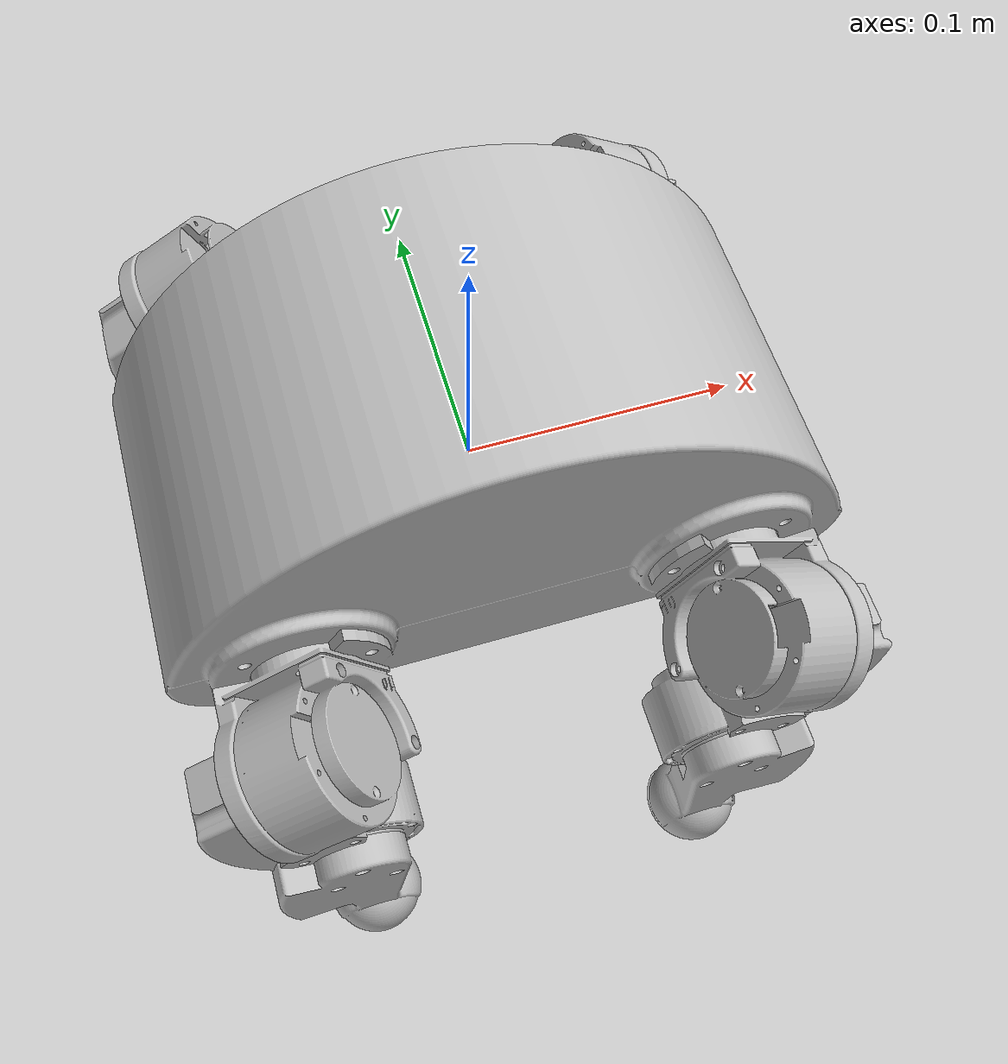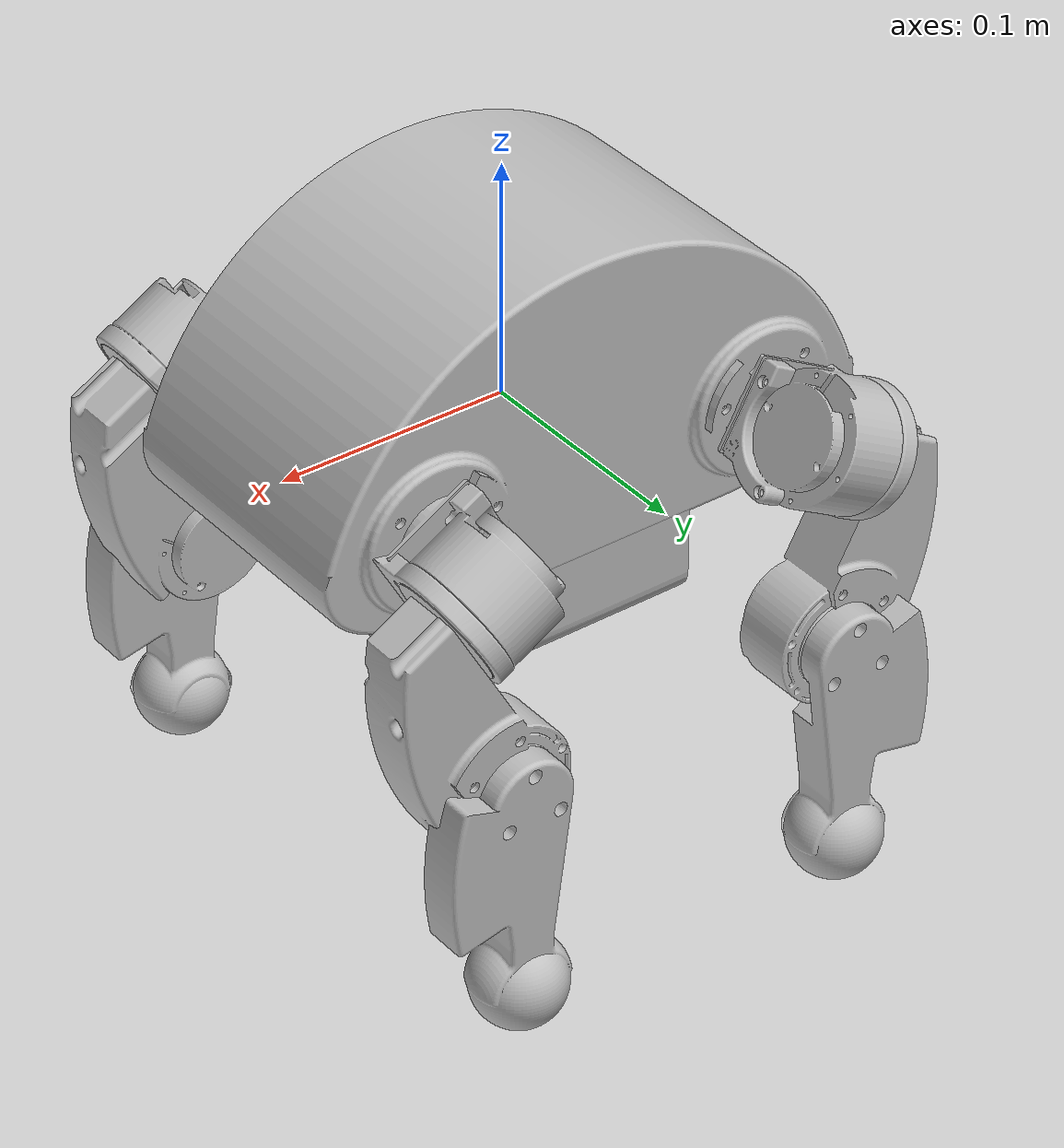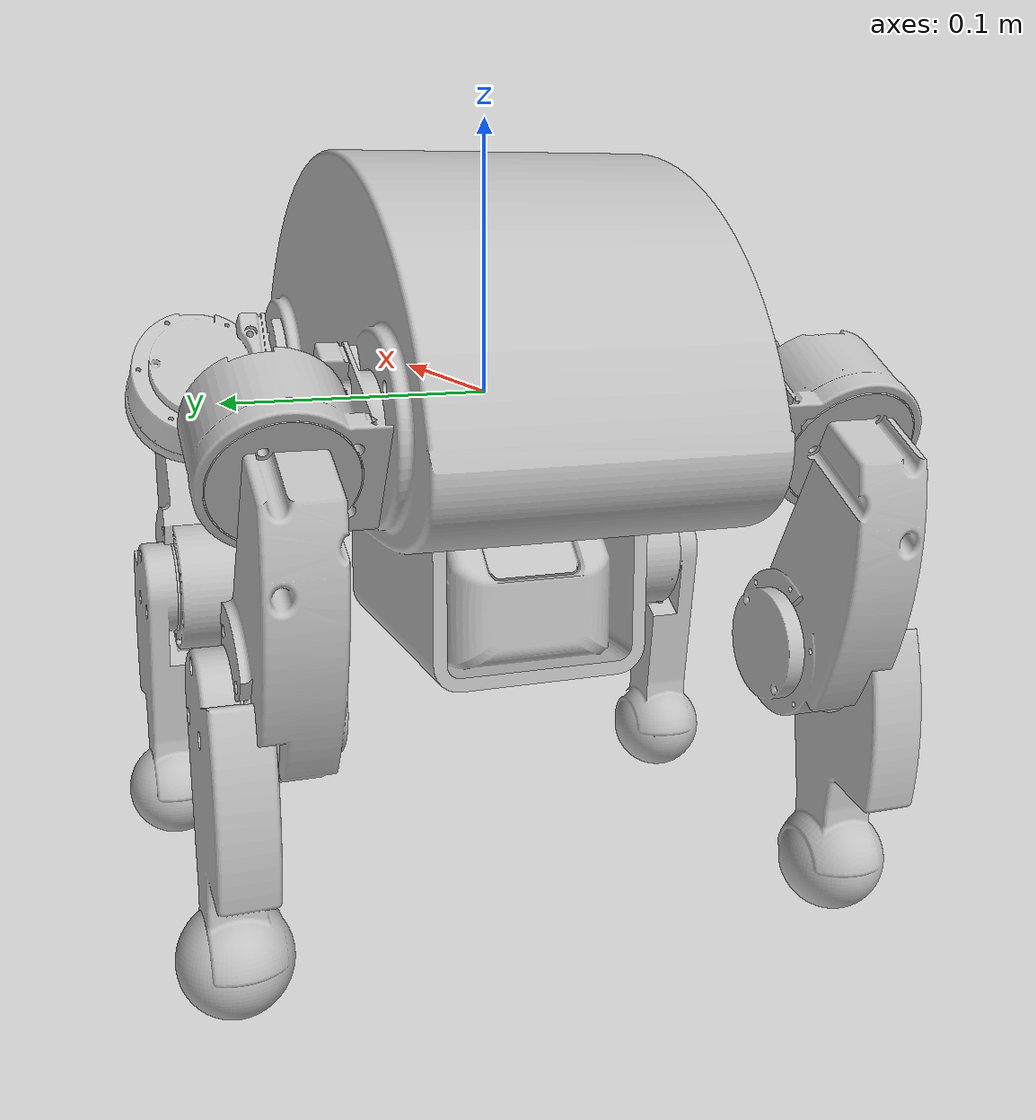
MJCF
<mujoco model="rollingquad_description_2">
  <compiler angle="radian"/>

  <asset>
    <mesh name="Lower_leg_with_foot_1" content_type="model/stl" file="../meshes/Lower_leg_with_foot_1.stl"/>
    <mesh name="Lower_leg_with_foot_1_2" content_type="model/stl" file="../meshes/Lower_leg_with_foot_1_2.stl"/>
    <mesh name="Lower_leg_with_foot_mirror_1" content_type="model/stl" file="../meshes/Lower_leg_with_foot_mirror_1.stl"/>
    <mesh name="Lower_leg_with_foot_mirror_1_2" content_type="model/stl" file="../meshes/Lower_leg_with_foot_mirror_1_2.stl"/>
    <mesh name="Upperleg_with_motor_1" content_type="model/stl" file="../meshes/Upperleg_with_motor_1.stl"/>
    <mesh name="Upperleg_with_motor_1_2" content_type="model/stl" file="../meshes/Upperleg_with_motor_1_2.stl"/>
    <mesh name="Upperleg_with_motor_mirror_1" content_type="model/stl" file="../meshes/Upperleg_with_motor_mirror_1.stl"/>
    <mesh name="Upperleg_with_motor_mirror_1_2" content_type="model/stl" file="../meshes/Upperleg_with_motor_mirror_1_2.stl"/>
    <mesh name="abduction_mirror_1" content_type="model/stl" file="../meshes/abduction_mirror_1.stl"/>
    <mesh name="abduction_mirror_1_2" content_type="model/stl" file="../meshes/abduction_mirror_1_2.stl"/>
    <mesh name="abduction_1" content_type="model/stl" file="../meshes/abduction_1.stl"/>
    <mesh name="abduction_1_2" content_type="model/stl" file="../meshes/abduction_1_2.stl"/>
    <mesh name="torso_2" content_type="model/stl" file="../meshes/torso_2.stl"/>
  </asset>

  <worldbody>
    <geom type="mesh" rgba="0.749 0.749 0.749 1" mesh="torso_2"/>
    <body name="abduction_mirror_1" pos="0.0752002 -0.0650008 -3.15437e-07" quat="0.707105 0.707108 1.28657e-06 5.65589e-07">
      <inertial pos="0.00310332 -0.00189648 -0.160009" quat="0.969701 -0.00815916 0.0210186 -0.243253" mass="0.179903" diaginertia="7.15749e-05 5.16423e-05 4.28065e-05"/>
      <joint name="torso_2__abduction_mirror_1" range="-1.74533 1.90241" actuatorfrcrange="-10 10"/>
      <geom type="mesh" rgba="0.749 0.749 0.749 1" mesh="abduction_mirror_1"/>
      <body name="Upperleg_with_motor_2" pos="0.0146072 -0.00819716 -0.162001">
        <inertial pos="-0.0101991 -0.0708564 0.000226941" quat="0.617317 0.345769 -0.618182 0.342365" mass="0.18907" diaginertia="0.000132232 0.000106686 4.49875e-05"/>
        <joint name="abduction_mirror_1__Upperleg_with_motor_2" range="-0.5236 3.66519" actuatorfrcrange="-10 10" axis="0.872069 -0.489382 0"/>
        <geom type="mesh" rgba="0.749 0.749 0.749 1" mesh="Upperleg_with_motor_1_2"/>
        <body name="Lower_leg_with_foot_2" pos="-0.0137759 -0.0767678 0.01075">
          <inertial pos="0.00457242 -0.0602669 -0.0272819" quat="0.439984 0.532687 -0.48053 0.540139" mass="0.046425" diaginertia="6.03771e-05 5.63949e-05 8.99449e-06"/>
          <joint name="Upperleg_with_motor_2__Lower_leg_with_foot_2" range="0.174533 2.0944" actuatorfrcrange="-10 10" axis="0 0 -1"/>
          <geom type="mesh" rgba="0.749 0.749 0.749 1" mesh="Lower_leg_with_foot_1_2"/>
        </body>
      </body>
    </body>
    <body name="abduction_mirror_2" pos="-0.0752002 0.0650008 3.15437e-07" quat="0.707105 0.707108 1.28657e-06 5.65589e-07">
      <inertial pos="-0.00310332 -0.00189648 0.160009" quat="0.969701 0.00815916 0.0210186 0.243253" mass="0.179903" diaginertia="7.15749e-05 5.16423e-05 4.28065e-05"/>
      <joint name="torso_2__abduction_mirror_2" range="-1.74533 1.90241" actuatorfrcrange="-10 10" axis="0 0 -1"/>
      <geom type="mesh" rgba="0.749 0.749 0.749 1" mesh="abduction_mirror_1_2"/>
      <body name="Upperleg_with_motor_1" pos="-0.0156536 -0.00878442 0.162001">
        <inertial pos="0.0112456 -0.0702691 -0.000226941" quat="0.345769 0.617317 -0.342365 0.618182" mass="0.18907" diaginertia="0.000132232 0.000106686 4.49875e-05"/>
        <joint name="abduction_mirror_2__Upperleg_with_motor_1" range="-0.5236 3.66519" actuatorfrcrange="-10 10" axis="-0.872069 -0.489382 0"/>
        <geom type="mesh" rgba="0.749 0.749 0.749 1" mesh="Upperleg_with_motor_1"/>
        <body name="Lower_leg_with_foot_1" pos="0.0148224 -0.0761805 0.014">
          <inertial pos="-0.00457242 -0.0602669 0.0025319" quat="0.532687 0.439984 -0.540139 0.48053" mass="0.046425" diaginertia="6.03771e-05 5.63949e-05 8.99449e-06"/>
          <joint name="Upperleg_with_motor_1__Lower_leg_with_foot_1" range="0.174533 2.0944" actuatorfrcrange="-10 10"/>
          <geom type="mesh" rgba="0.749 0.749 0.749 1" mesh="Lower_leg_with_foot_1"/>
        </body>
      </body>
    </body>
    <body name="abduction_1" pos="0.0751998 0.0650012 1.62087e-07" quat="0.707105 0.707108 1.28657e-06 5.65589e-07">
      <inertial pos="0.00284687 -0.00174682 0.15995" quat="0.969271 -0.0133055 -0.0221507 -0.244634" mass="0.179903" diaginertia="7.23188e-05 5.20415e-05 4.37798e-05"/>
      <joint name="torso_2__abduction_1" range="-1.74533 1.90241" actuatorfrcrange="-10 10"/>
      <geom type="mesh" rgba="0.749 0.749 0.749 1" mesh="abduction_1"/>
      <body name="Upperleg_with_motor_mirror_1" pos="0.0146072 -0.00819716 0.162001">
        <inertial pos="-0.0103691 -0.0707641 0.000638364" quat="0.614246 0.344453 -0.621362 0.343458" mass="0.18907" diaginertia="0.000132245 0.000106711 4.4972e-05"/>
        <joint name="abduction_1__Upperleg_with_motor_mirror_1" range="-0.5236 3.66519" actuatorfrcrange="-10 10" axis="-0.872069 0.489382 0"/>
        <geom type="mesh" rgba="0.749 0.749 0.749 1" mesh="Upperleg_with_motor_mirror_1"/>
        <body name="Lower_leg_with_foot_mirror_1" pos="-0.0139503 -0.0766699 -0.00975">
          <inertial pos="0.00457242 -0.0602669 0.0272819" quat="0.48053 0.540139 -0.439984 0.532687" mass="0.046425" diaginertia="6.03771e-05 5.63949e-05 8.99449e-06"/>
          <joint name="Upperleg_with_motor_mirror_1__Lower_leg_with_foot_mirror_1" range="0.17453 2.0944" actuatorfrcrange="-10 10" axis="0 0 -1"/>
          <geom type="mesh" rgba="0.749 0.749 0.749 1" mesh="Lower_leg_with_foot_mirror_1"/>
        </body>
      </body>
    </body>
    <body name="abduction_9" pos="-0.0751998 -0.0650012 -1.62087e-07" quat="0.707105 0.707108 1.28657e-06 5.65589e-07">
      <inertial pos="-0.00284687 -0.00174682 -0.15995" quat="0.969271 0.0133055 -0.0221507 0.244634" mass="0.179903" diaginertia="7.23188e-05 5.20415e-05 4.37798e-05"/>
      <joint name="torso_2__abduction_9" range="-1.74533 1.90241" actuatorfrcrange="-10 10" axis="0 0 -1"/>
      <geom type="mesh" rgba="0.749 0.749 0.749 1" mesh="abduction_1_2"/>
      <body name="Upperleg_with_motor_mirror_2" pos="-0.0146072 -0.00819716 -0.162001">
        <inertial pos="0.0103691 -0.0707641 -0.000638364" quat="0.344453 0.614246 -0.343458 0.621362" mass="0.18907" diaginertia="0.000132245 0.000106711 4.4972e-05"/>
        <joint name="abduction_9__Upperleg_with_motor_mirror_2" range="-0.5236 3.66519" actuatorfrcrange="-10 10" axis="0.872069 0.489382 0"/>
        <geom type="mesh" rgba="0.749 0.749 0.749 1" mesh="Upperleg_with_motor_mirror_1_2"/>
        <body name="Lower_leg_with_foot_mirror_2" pos="0.0139503 -0.0766699 0.00975">
          <inertial pos="-0.00457242 -0.0602669 -0.0272819" quat="0.540139 0.48053 -0.532687 0.439984" mass="0.046425" diaginertia="6.03771e-05 5.63949e-05 8.99449e-06"/>
          <joint name="Upperleg_with_motor_mirror_2__Lower_leg_with_foot_mirror_2" range="0.17453 2.0944" actuatorfrcrange="-10 10"/>
          <geom type="mesh" rgba="0.749 0.749 0.749 1" mesh="Lower_leg_with_foot_mirror_1_2"/>
        </body>
      </body>
    </body>
  </worldbody>
</mujoco>
